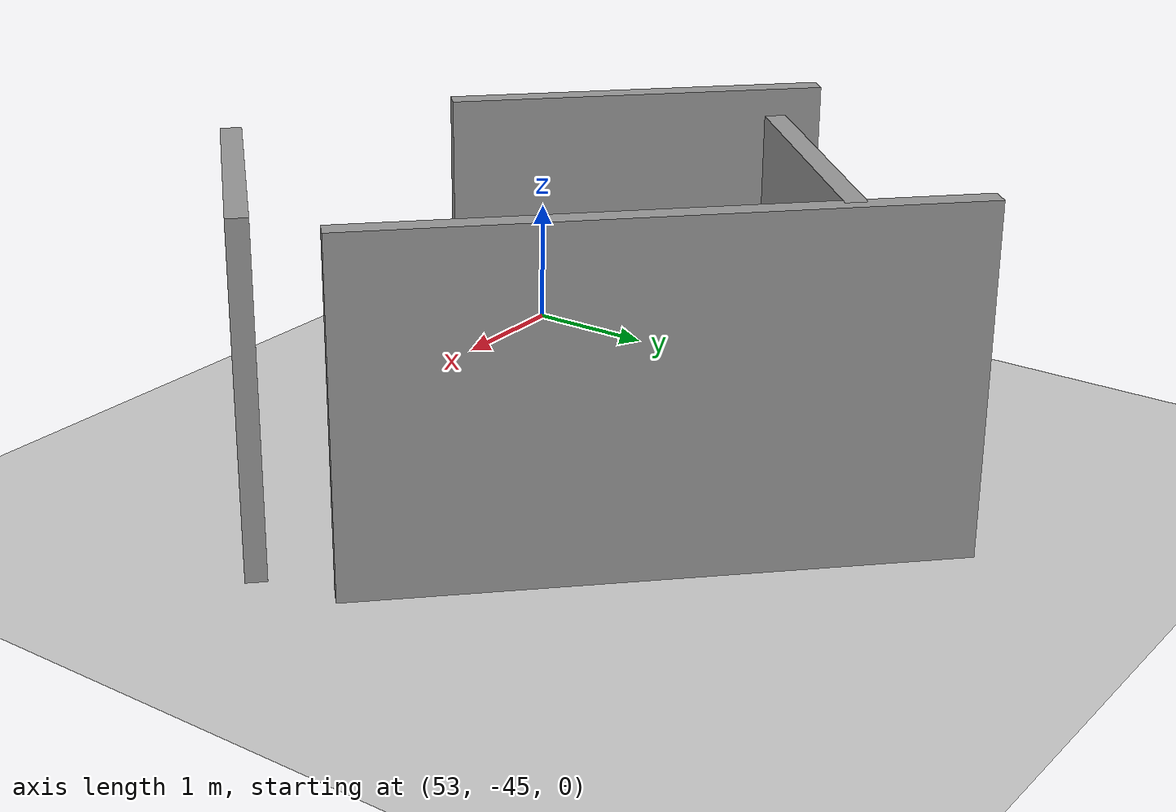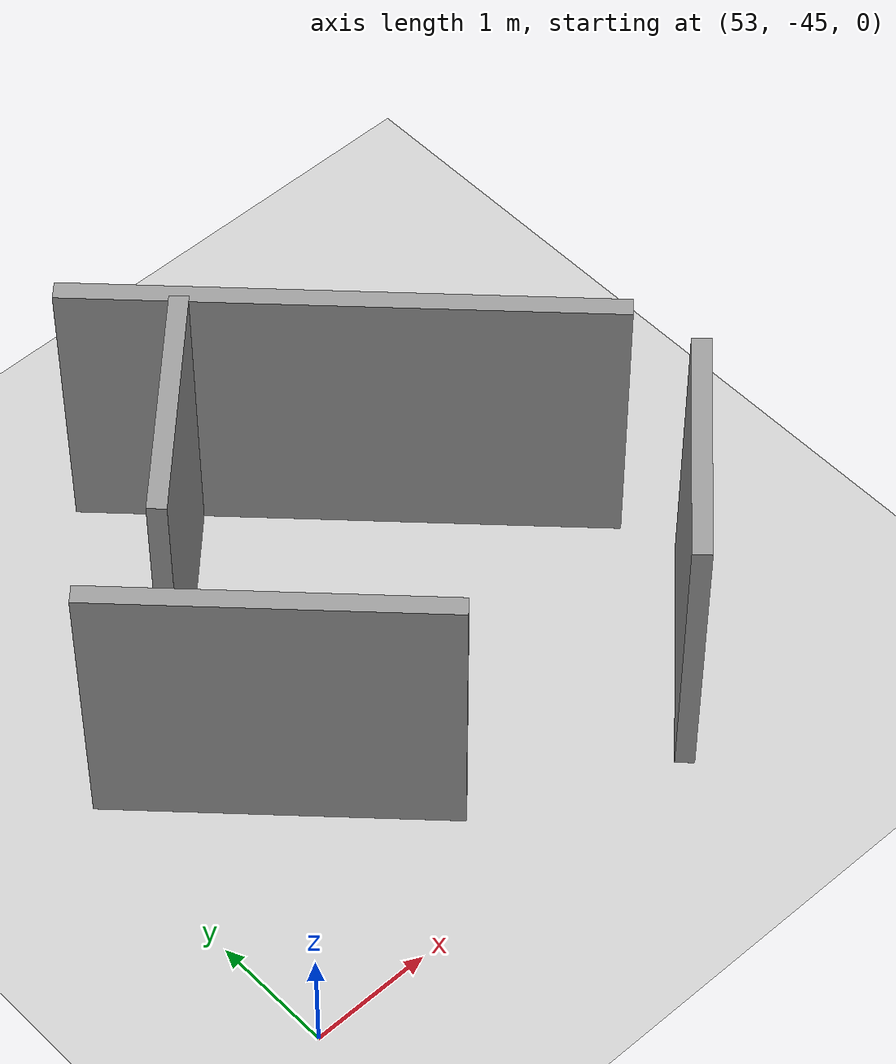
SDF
<sdf version="1.6">
 <world name="default">
  <model name="ground_plane">
   <static>1</static>
   <link name="link">
    <collision name="collision">
     <geometry><plane><normal>0 0 1</normal><size>100 100</size></plane></geometry>
     <surface><friction><ode><mu>100</mu><mu2>50</mu2></ode></friction></surface>
    </collision>
    <visual name="visual">
     <cast_shadows>0</cast_shadows>
     <geometry><plane><normal>0 0 1</normal><size>100 100</size></plane></geometry>
     <material>
      <script><uri>file://media/materials/scripts/gazebo.material</uri><name>Gazebo/Grey</name></script>
     </material>
    </visual>
   </link>
  </model>
  <model name="obs2_6">
   <pose>55.5679 -42.586 0 0 -0 0</pose>
   <link name="Wall_0">
    <collision name="Wall_0_Collision">
     <geometry><box><size>2 0.15 2.5</size></box></geometry>
     <pose>0 0 1.25 0 -0 0</pose>
    </collision>
    <visual name="Wall_0_Visual">
     <pose>0 0 1.25 0 -0 0</pose>
     <geometry><box><size>2 0.15 2.5</size></box></geometry>
     <material>
      <script><uri>file://media/materials/scripts/gazebo.material</uri><name>Gazebo/Grey</name></script>
      <ambient>1 1 1 1</ambient>
     </material>
    </visual>
    <pose>-0.796332 1.10862 0 0 -0 0.785398</pose>
   </link>
   <link name="Wall_2">
    <collision name="Wall_2_Collision">
     <geometry><box><size>4.25 0.15 2.5</size></box></geometry>
     <pose>0 0 1.25 0 -0 0</pose>
    </collision>
    <visual name="Wall_2_Visual">
     <pose>0 0 1.25 0 -0 0</pose>
     <geometry><box><size>4.25 0.15 2.5</size></box></geometry>
     <material>
      <script><uri>file://media/materials/scripts/gazebo.material</uri><name>Gazebo/Grey</name></script>
      <ambient>1 1 1 1</ambient>
     </material>
    </visual>
    <pose>0.773928 0.982661 0 0 0 -0.785398</pose>
   </link>
   <link name="Wall_4">
    <collision name="Wall_4_Collision">
     <geometry><box><size>2.75 0.15 2.5</size></box></geometry>
     <pose>0 0 1.25 0 -0 0</pose>
    </collision>
    <visual name="Wall_4_Visual">
     <pose>0 0 1.25 0 -0 0</pose>
     <geometry><box><size>2.75 0.15 2.5</size></box></geometry>
     <material>
      <script><uri>file://media/materials/scripts/gazebo.material</uri><name>Gazebo/Grey</name></script>
      <ambient>1 1 1 1</ambient>
     </material>
    </visual>
    <pose>-1.45556 -0.740711 0 0 0 -0.785398</pose>
   </link>
   <link name="Wall_6">
    <collision name="Wall_6_Collision">
     <geometry><box><size>2 0.15 2.5</size></box></geometry>
     <pose>0 0 1.25 0 -0 0</pose>
    </collision>
    <visual name="Wall_6_Visual">
     <pose>0 0 1.25 0 -0 0</pose>
     <geometry><box><size>2 0.15 2.5</size></box></geometry>
     <material>
      <script><uri>file://media/materials/scripts/gazebo.material</uri><name>Gazebo/Grey</name></script>
      <ambient>1 1 1 1</ambient>
     </material>
    </visual>
    <pose>1.72073 -1.77816 0 0 -0 0.785398</pose>
   </link>
   <static>1</static>
  </model>
 </world>
</sdf>
